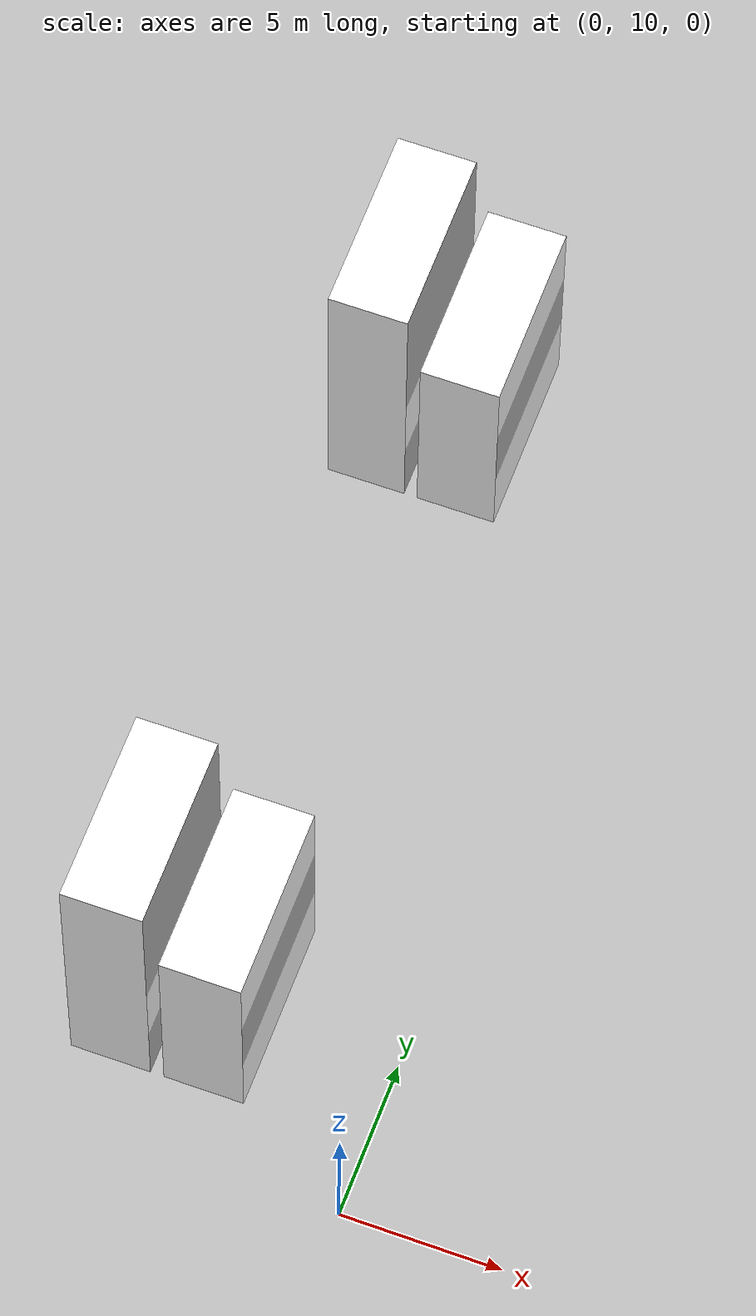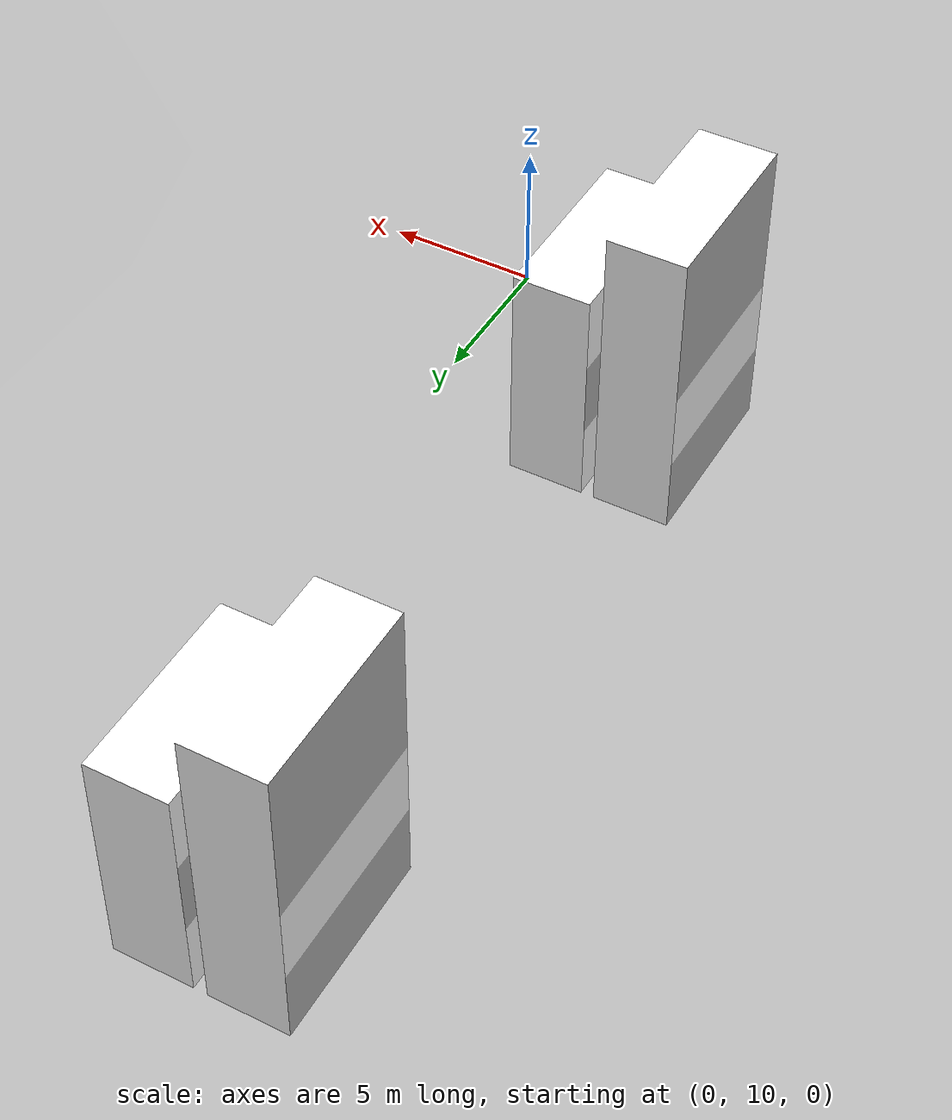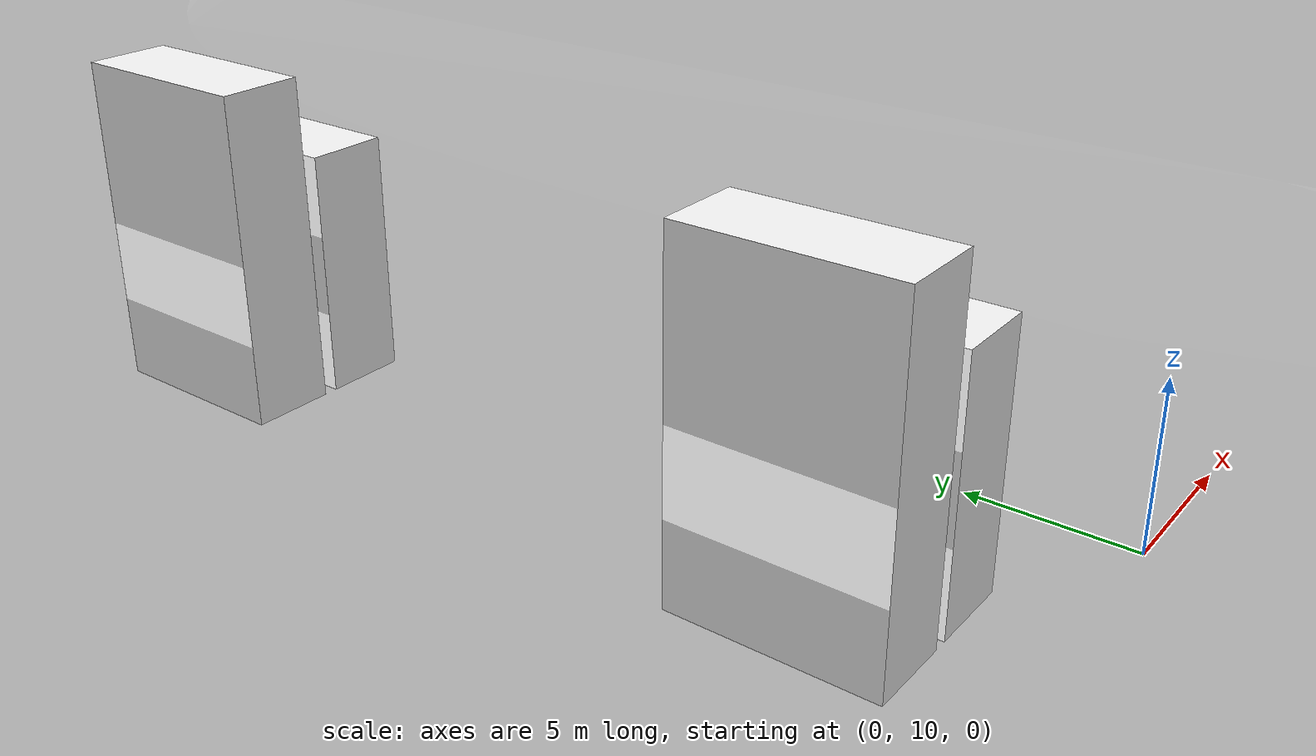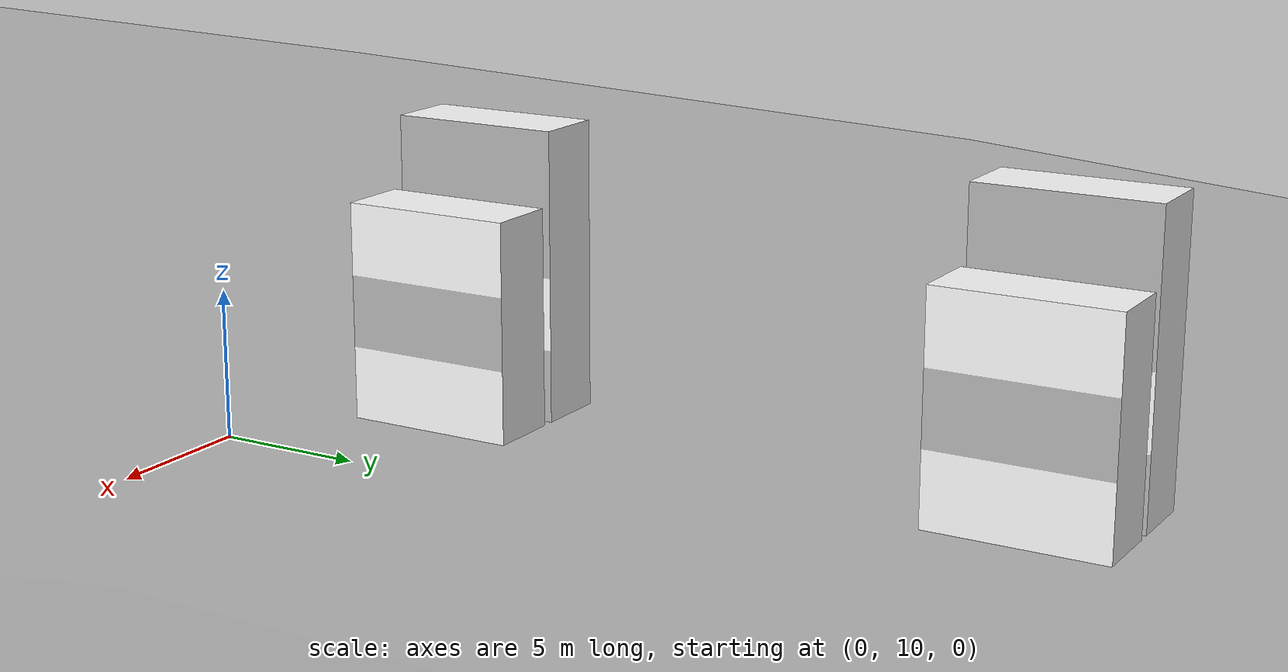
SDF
<sdf version="1.6">
 <world name="default">
  <light name="sun" type="directional">
   <pose>0 0 10 0 -0 0</pose>
   <diffuse>0.8 0.8 0.8 1</diffuse>
   <specular>0.2 0.2 0.2 1</specular>
   <attenuation>
    <range>1000</range>
    <constant>0.9</constant>
    <linear>0.01</linear>
    <quadratic>0.001</quadratic>
   </attenuation>
   <direction>-0.5 0.1 -0.9</direction>
  </light>
  <gravity>0 0 -9.8</gravity>
  <magnetic_field>6e-06 2.3e-05 -4.2e-05</magnetic_field>
  <atmosphere type="adiabatic"/>
  <physics name="default_physics" default="0" type="ode">
   <max_step_size>0.001</max_step_size>
   <real_time_factor>1</real_time_factor>
   <real_time_update_rate>1000</real_time_update_rate>
  </physics>
  <scene><ambient>0.4 0.4 0.4 1</ambient><background>0.7 0.7 0.7 1</background><shadows>1</shadows></scene>
  <spherical_coordinates>
   <surface_model>EARTH_WGS84</surface_model>
   <latitude_deg>0</latitude_deg>
   <longitude_deg>0</longitude_deg>
   <elevation>0</elevation>
   <heading_deg>0</heading_deg>
  </spherical_coordinates>
  <model name="mcity">
   <static>1</static>
   <link name="link">
    <collision name="collision">
     <geometry><mesh><scale>0.254 0.254 0.254</scale><uri>model://mcity/meshes/mcity.obj</uri></mesh></geometry>
    </collision>
    <visual name="visual">
     <geometry><mesh><scale>0.254 0.254 0.254</scale><uri>model://mcity/meshes/mcity.obj</uri></mesh></geometry>
    </visual>
   </link>
   <pose>171.984 -24.108 0 0 -0 0</pose>
  </model>
  <model name="container-multi-stack">
   <static>1</static>
   <link name="chassis">
    <collision name="collision">
     <geometry><mesh><uri>model://container-multi-stack/container-multi-stack.dae</uri></mesh></geometry>
    </collision>
    <visual name="visual">
     <geometry><mesh><uri>model://container-multi-stack/container-multi-stack.dae</uri></mesh></geometry>
    </visual>
   </link>
   <pose>-9.27311 11.2299 0 0 -0 0</pose>
  </model>
  <model name="container-multi-stack_0">
   <static>1</static>
   <link name="chassis">
    <collision name="collision">
     <geometry><mesh><uri>model://container-multi-stack/container-multi-stack.dae</uri></mesh></geometry>
    </collision>
    <visual name="visual">
     <geometry><mesh><uri>model://container-multi-stack/container-multi-stack.dae</uri></mesh></geometry>
    </visual>
   </link>
   <pose>-8.9943 32.1935 0 0 -0 0</pose>
  </model>
 </world>
</sdf>
